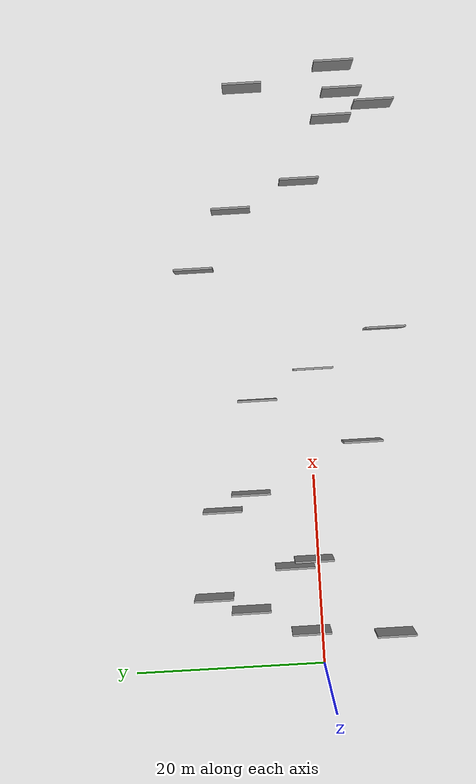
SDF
<sdf version="1.6">
 <world name="default">
  <scene>
   <sky><clouds><speed>12</speed></clouds></sky>
   <ambient>0.4 0.4 0.4 1</ambient>
   <background>0.7 0.7 0.7 1</background>
   <shadows>1</shadows>
  </scene>
  <gravity>0 0 -9.8066</gravity>
  <magnetic_field>6e-06 2.3e-05 -4.2e-05</magnetic_field>
  <physics default="0" name="default_physics" type="ode">
   <ode>
    <solver>
     <type>quick</type>
     <iters>10</iters>
     <sor>1.0</sor>
     <use_dynamic_moi_rescaling>0</use_dynamic_moi_rescaling>
    </solver>
    <constraints>
     <cfm>0</cfm>
     <erp>0.2</erp>
     <contact_max_correcting_vel>100</contact_max_correcting_vel>
     <contact_surface_layer>0.001</contact_surface_layer>
    </constraints>
   </ode>
   <max_step_size>0.004</max_step_size>
   <real_time_factor>1</real_time_factor>
   <real_time_update_rate>250</real_time_update_rate>
  </physics>
  <light name="sun" type="directional">
   <pose>0 0 10 0 0 0</pose>
   <diffuse>0.8 0.8 0.8 1</diffuse>
   <specular>0.2 0.2 0.2 1</specular>
   <attenuation>
    <range>1000</range>
    <constant>0.9</constant>
    <linear>0.01</linear>
    <quadratic>0.001</quadratic>
   </attenuation>
   <direction>-0.5 0.1 -0.9</direction>
  </light>
  <model name="grey_wall_1">
   <static>1</static>
   <pose>28.3968 5.5588 2.5 0.000000 0.000000 1.570796</pose>
   <link name="link">
    <pose>0 0 2.00 0 0 0</pose>
    <collision name="collision"><geometry><box><size>4.00 0.2 4.00</size></box></geometry></collision>
    <visual name="visual">
     <cast_shadows>0</cast_shadows>
     <geometry><box><size>4.00 0.2 4.00</size></box></geometry>
     <material>
      <script>
       <uri>model://grey_wall/materials/scripts</uri>
       <uri>model://grey_wall/materials/textures</uri>
       <name>vrc/grey_wall</name>
      </script>
     </material>
    </visual>
   </link>
  </model>
  <model name="grey_wall_2">
   <static>1</static>
   <pose>11.1994 2.6727 2.5 0.000000 0.000000 1.570796</pose>
   <link name="link">
    <pose>0 0 2.00 0 0 0</pose>
    <collision name="collision"><geometry><box><size>4.00 0.2 4.00</size></box></geometry></collision>
    <visual name="visual">
     <cast_shadows>0</cast_shadows>
     <geometry><box><size>4.00 0.2 4.00</size></box></geometry>
     <material>
      <script>
       <uri>model://grey_wall/materials/scripts</uri>
       <uri>model://grey_wall/materials/textures</uri>
       <name>vrc/grey_wall</name>
      </script>
     </material>
    </visual>
   </link>
  </model>
  <model name="grey_wall_3">
   <static>1</static>
   <pose>18.8896 6.7388 2.5 0.000000 0.000000 1.570796</pose>
   <link name="link">
    <pose>0 0 2.00 0 0 0</pose>
    <collision name="collision"><geometry><box><size>4.00 0.2 4.00</size></box></geometry></collision>
    <visual name="visual">
     <cast_shadows>0</cast_shadows>
     <geometry><box><size>4.00 0.2 4.00</size></box></geometry>
     <material>
      <script>
       <uri>model://grey_wall/materials/scripts</uri>
       <uri>model://grey_wall/materials/textures</uri>
       <name>vrc/grey_wall</name>
      </script>
     </material>
    </visual>
   </link>
  </model>
  <model name="grey_wall_4">
   <static>1</static>
   <pose>23.6388 -4.9676 2.5 0.000000 0.000000 1.570796</pose>
   <link name="link">
    <pose>0 0 2.00 0 0 0</pose>
    <collision name="collision"><geometry><box><size>4.00 0.2 4.00</size></box></geometry></collision>
    <visual name="visual">
     <cast_shadows>0</cast_shadows>
     <geometry><box><size>4.00 0.2 4.00</size></box></geometry>
     <material>
      <script>
       <uri>model://grey_wall/materials/scripts</uri>
       <uri>model://grey_wall/materials/textures</uri>
       <name>vrc/grey_wall</name>
      </script>
     </material>
    </visual>
   </link>
  </model>
  <model name="grey_wall_5">
   <static>1</static>
   <pose>62.3791 -4.1199 2.5 0.000000 0.000000 1.570796</pose>
   <link name="link">
    <pose>0 0 2.00 0 0 0</pose>
    <collision name="collision"><geometry><box><size>4.00 0.2 4.00</size></box></geometry></collision>
    <visual name="visual">
     <cast_shadows>0</cast_shadows>
     <geometry><box><size>4.00 0.2 4.00</size></box></geometry>
     <material>
      <script>
       <uri>model://grey_wall/materials/scripts</uri>
       <uri>model://grey_wall/materials/textures</uri>
       <name>vrc/grey_wall</name>
      </script>
     </material>
    </visual>
   </link>
  </model>
  <model name="grey_wall_6">
   <static>1</static>
   <pose>11.7967 0.6727 2.5 0.000000 0.000000 1.570796</pose>
   <link name="link">
    <pose>0 0 2.00 0 0 0</pose>
    <collision name="collision"><geometry><box><size>4.00 0.2 4.00</size></box></geometry></collision>
    <visual name="visual">
     <cast_shadows>0</cast_shadows>
     <geometry><box><size>4.00 0.2 4.00</size></box></geometry>
     <material>
      <script>
       <uri>model://grey_wall/materials/scripts</uri>
       <uri>model://grey_wall/materials/textures</uri>
       <name>vrc/grey_wall</name>
      </script>
     </material>
    </visual>
   </link>
  </model>
  <model name="grey_wall_7">
   <static>1</static>
   <pose>17.2858 9.7372 2.5 0.000000 0.000000 1.570796</pose>
   <link name="link">
    <pose>0 0 2.00 0 0 0</pose>
    <collision name="collision"><geometry><box><size>4.00 0.2 4.00</size></box></geometry></collision>
    <visual name="visual">
     <cast_shadows>0</cast_shadows>
     <geometry><box><size>4.00 0.2 4.00</size></box></geometry>
     <material>
      <script>
       <uri>model://grey_wall/materials/scripts</uri>
       <uri>model://grey_wall/materials/textures</uri>
       <name>vrc/grey_wall</name>
      </script>
     </material>
    </visual>
   </link>
  </model>
  <model name="grey_wall_8">
   <static>1</static>
   <pose>31.3209 -0.3164 2.5 0.000000 0.000000 1.570796</pose>
   <link name="link">
    <pose>0 0 2.00 0 0 0</pose>
    <collision name="collision"><geometry><box><size>4.00 0.2 4.00</size></box></geometry></collision>
    <visual name="visual">
     <cast_shadows>0</cast_shadows>
     <geometry><box><size>4.00 0.2 4.00</size></box></geometry>
     <material>
      <script>
       <uri>model://grey_wall/materials/scripts</uri>
       <uri>model://grey_wall/materials/textures</uri>
       <name>vrc/grey_wall</name>
      </script>
     </material>
    </visual>
   </link>
  </model>
  <model name="grey_wall_9">
   <static>1</static>
   <pose>8.4131 11.1066 2.5 0.000000 0.000000 1.570796</pose>
   <link name="link">
    <pose>0 0 2.00 0 0 0</pose>
    <collision name="collision"><geometry><box><size>4.00 0.2 4.00</size></box></geometry></collision>
    <visual name="visual">
     <cast_shadows>0</cast_shadows>
     <geometry><box><size>4.00 0.2 4.00</size></box></geometry>
     <material>
      <script>
       <uri>model://grey_wall/materials/scripts</uri>
       <uri>model://grey_wall/materials/textures</uri>
       <name>vrc/grey_wall</name>
      </script>
     </material>
    </visual>
   </link>
  </model>
  <model name="grey_wall_10">
   <static>1</static>
   <pose>35.1120 -7.8804 2.5 0.000000 0.000000 1.570796</pose>
   <link name="link">
    <pose>0 0 2.00 0 0 0</pose>
    <collision name="collision"><geometry><box><size>4.00 0.2 4.00</size></box></geometry></collision>
    <visual name="visual">
     <cast_shadows>0</cast_shadows>
     <geometry><box><size>4.00 0.2 4.00</size></box></geometry>
     <material>
      <script>
       <uri>model://grey_wall/materials/scripts</uri>
       <uri>model://grey_wall/materials/textures</uri>
       <name>vrc/grey_wall</name>
      </script>
     </material>
    </visual>
   </link>
  </model>
  <model name="grey_wall_11">
   <static>1</static>
   <pose>6.9530 7.3696 2.5 0.000000 0.000000 1.570796</pose>
   <link name="link">
    <pose>0 0 2.00 0 0 0</pose>
    <collision name="collision"><geometry><box><size>4.00 0.2 4.00</size></box></geometry></collision>
    <visual name="visual">
     <cast_shadows>0</cast_shadows>
     <geometry><box><size>4.00 0.2 4.00</size></box></geometry>
     <material>
      <script>
       <uri>model://grey_wall/materials/scripts</uri>
       <uri>model://grey_wall/materials/textures</uri>
       <name>vrc/grey_wall</name>
      </script>
     </material>
    </visual>
   </link>
  </model>
  <model name="grey_wall_12">
   <static>1</static>
   <pose>3.7728 -7.2593 2.5 0.000000 0.000000 1.570796</pose>
   <link name="link">
    <pose>0 0 2.00 0 0 0</pose>
    <collision name="collision"><geometry><box><size>4.00 0.2 4.00</size></box></geometry></collision>
    <visual name="visual">
     <cast_shadows>0</cast_shadows>
     <geometry><box><size>4.00 0.2 4.00</size></box></geometry>
     <material>
      <script>
       <uri>model://grey_wall/materials/scripts</uri>
       <uri>model://grey_wall/materials/textures</uri>
       <name>vrc/grey_wall</name>
      </script>
     </material>
    </visual>
   </link>
  </model>
  <model name="grey_wall_13">
   <static>1</static>
   <pose>50.6479 0.0414 2.5 0.000000 0.000000 1.570796</pose>
   <link name="link">
    <pose>0 0 2.00 0 0 0</pose>
    <collision name="collision"><geometry><box><size>4.00 0.2 4.00</size></box></geometry></collision>
    <visual name="visual">
     <cast_shadows>0</cast_shadows>
     <geometry><box><size>4.00 0.2 4.00</size></box></geometry>
     <material>
      <script>
       <uri>model://grey_wall/materials/scripts</uri>
       <uri>model://grey_wall/materials/textures</uri>
       <name>vrc/grey_wall</name>
      </script>
     </material>
    </visual>
   </link>
  </model>
  <model name="grey_wall_14">
   <static>1</static>
   <pose>58.2196 -7.9923 2.5 0.000000 0.000000 1.570796</pose>
   <link name="link">
    <pose>0 0 2.00 0 0 0</pose>
    <collision name="collision"><geometry><box><size>4.00 0.2 4.00</size></box></geometry></collision>
    <visual name="visual">
     <cast_shadows>0</cast_shadows>
     <geometry><box><size>4.00 0.2 4.00</size></box></geometry>
     <material>
      <script>
       <uri>model://grey_wall/materials/scripts</uri>
       <uri>model://grey_wall/materials/textures</uri>
       <name>vrc/grey_wall</name>
      </script>
     </material>
    </visual>
   </link>
  </model>
  <model name="grey_wall_15">
   <static>1</static>
   <pose>59.6118 -4.8260 2.5 0.000000 0.000000 1.570796</pose>
   <link name="link">
    <pose>0 0 2.00 0 0 0</pose>
    <collision name="collision"><geometry><box><size>4.00 0.2 4.00</size></box></geometry></collision>
    <visual name="visual">
     <cast_shadows>0</cast_shadows>
     <geometry><box><size>4.00 0.2 4.00</size></box></geometry>
     <material>
      <script>
       <uri>model://grey_wall/materials/scripts</uri>
       <uri>model://grey_wall/materials/textures</uri>
       <name>vrc/grey_wall</name>
      </script>
     </material>
    </visual>
   </link>
  </model>
  <model name="grey_wall_16">
   <static>1</static>
   <pose>42.0684 11.3313 2.5 0.000000 0.000000 1.570796</pose>
   <link name="link">
    <pose>0 0 2.00 0 0 0</pose>
    <collision name="collision"><geometry><box><size>4.00 0.2 4.00</size></box></geometry></collision>
    <visual name="visual">
     <cast_shadows>0</cast_shadows>
     <geometry><box><size>4.00 0.2 4.00</size></box></geometry>
     <material>
      <script>
       <uri>model://grey_wall/materials/scripts</uri>
       <uri>model://grey_wall/materials/textures</uri>
       <name>vrc/grey_wall</name>
      </script>
     </material>
    </visual>
   </link>
  </model>
  <model name="grey_wall_17">
   <static>1</static>
   <pose>60.5737 5.3107 2.5 0.000000 0.000000 1.570796</pose>
   <link name="link">
    <pose>0 0 2.00 0 0 0</pose>
    <collision name="collision"><geometry><box><size>4.00 0.2 4.00</size></box></geometry></collision>
    <visual name="visual">
     <cast_shadows>0</cast_shadows>
     <geometry><box><size>4.00 0.2 4.00</size></box></geometry>
     <material>
      <script>
       <uri>model://grey_wall/materials/scripts</uri>
       <uri>model://grey_wall/materials/textures</uri>
       <name>vrc/grey_wall</name>
      </script>
     </material>
    </visual>
   </link>
  </model>
  <model name="grey_wall_18">
   <static>1</static>
   <pose>48.0183 7.1754 2.5 0.000000 0.000000 1.570796</pose>
   <link name="link">
    <pose>0 0 2.00 0 0 0</pose>
    <collision name="collision"><geometry><box><size>4.00 0.2 4.00</size></box></geometry></collision>
    <visual name="visual">
     <cast_shadows>0</cast_shadows>
     <geometry><box><size>4.00 0.2 4.00</size></box></geometry>
     <material>
      <script>
       <uri>model://grey_wall/materials/scripts</uri>
       <uri>model://grey_wall/materials/textures</uri>
       <name>vrc/grey_wall</name>
      </script>
     </material>
    </visual>
   </link>
  </model>
  <model name="grey_wall_19">
   <static>1</static>
   <pose>56.9027 -3.6013 2.5 0.000000 0.000000 1.570796</pose>
   <link name="link">
    <pose>0 0 2.00 0 0 0</pose>
    <collision name="collision"><geometry><box><size>4.00 0.2 4.00</size></box></geometry></collision>
    <visual name="visual">
     <cast_shadows>0</cast_shadows>
     <geometry><box><size>4.00 0.2 4.00</size></box></geometry>
     <material>
      <script>
       <uri>model://grey_wall/materials/scripts</uri>
       <uri>model://grey_wall/materials/textures</uri>
       <name>vrc/grey_wall</name>
      </script>
     </material>
    </visual>
   </link>
  </model>
  <model name="grey_wall_20">
   <static>1</static>
   <pose>4.4597 1.3489 2.5 0.000000 0.000000 1.570796</pose>
   <link name="link">
    <pose>0 0 2.00 0 0 0</pose>
    <collision name="collision"><geometry><box><size>4.00 0.2 4.00</size></box></geometry></collision>
    <visual name="visual">
     <cast_shadows>0</cast_shadows>
     <geometry><box><size>4.00 0.2 4.00</size></box></geometry>
     <material>
      <script>
       <uri>model://grey_wall/materials/scripts</uri>
       <uri>model://grey_wall/materials/textures</uri>
       <name>vrc/grey_wall</name>
      </script>
     </material>
    </visual>
   </link>
  </model>
 </world>
</sdf>
